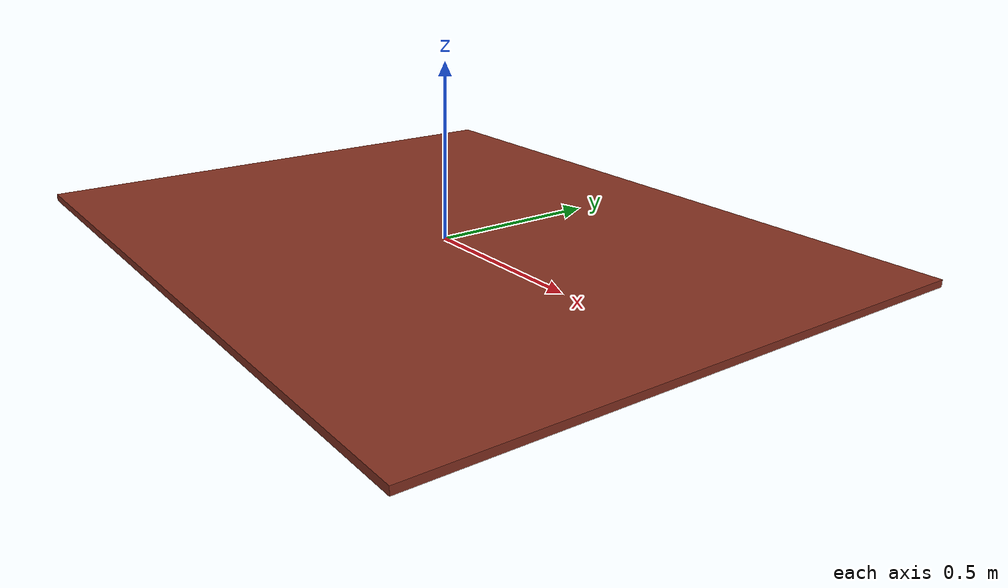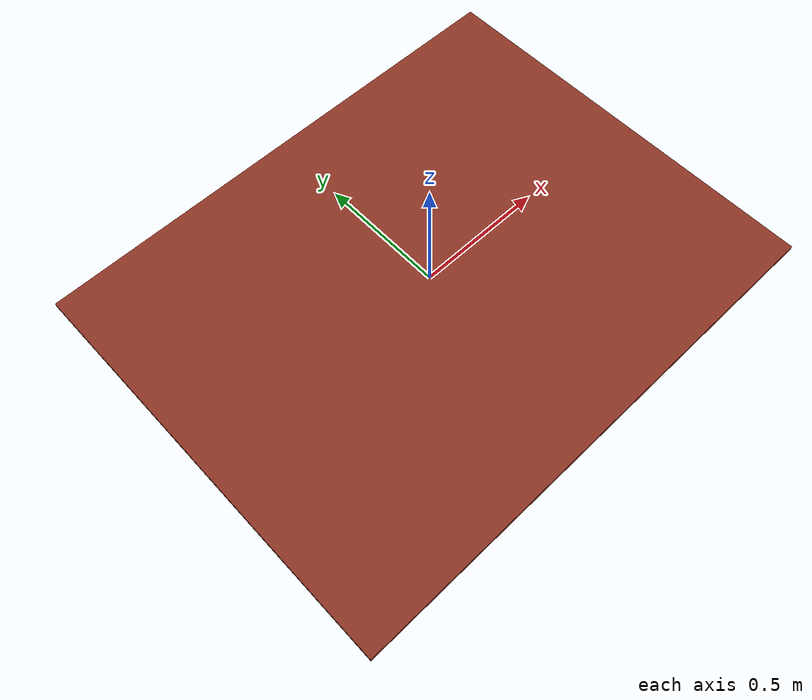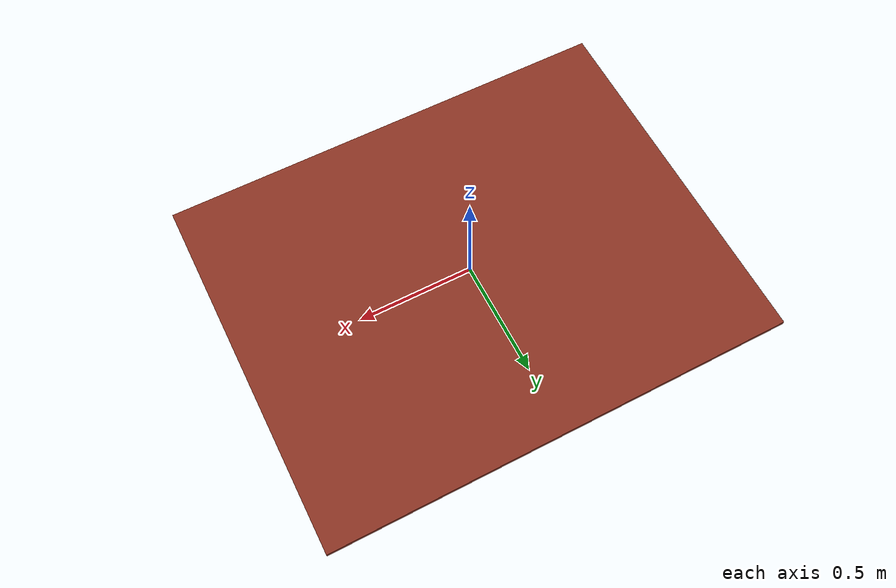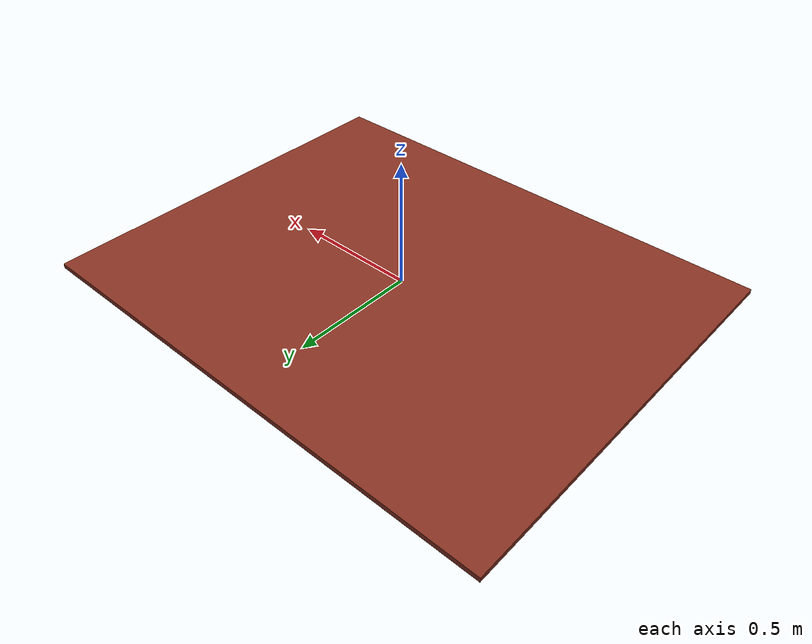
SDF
<?xml version="1.0"?>
<sdf version="1.7">
  <model name="floor_carpet">
    <static>true</static>
    <link name="link">

      <visual name="visual">
        <pose>0 0 0.010 0 0 0</pose>
        <geometry><box><size>2.00 1.60 0.020</size></box></geometry>
        <material>
          <ambient>0.38 0.14 0.10 1</ambient>
          <diffuse>0.52 0.19 0.13 1</diffuse>
          <specular>0.02 0.02 0.02 1</specular>
        </material>
      </visual>

      <collision name="collision">
        <pose>0 0 0.010 0 0 0</pose>
        <geometry><box><size>2.00 1.60 0.020</size></box></geometry>
        <surface>
          <friction>
            <ode>
              <mu>1.6</mu>
              <mu2>1.6</mu2>
            </ode>
          </friction>
        </surface>
      </collision>

    </link>
  </model>
</sdf>
